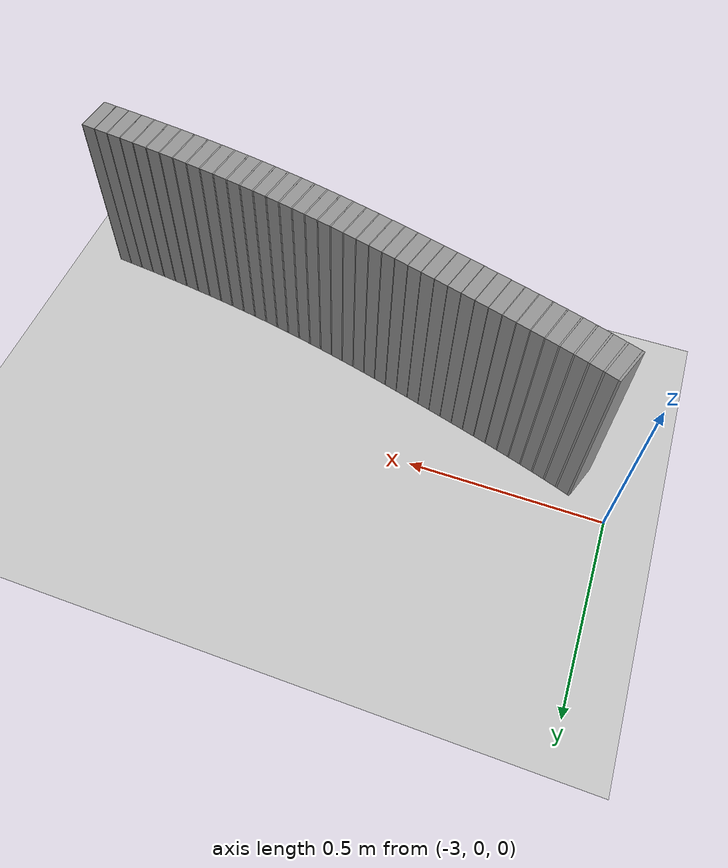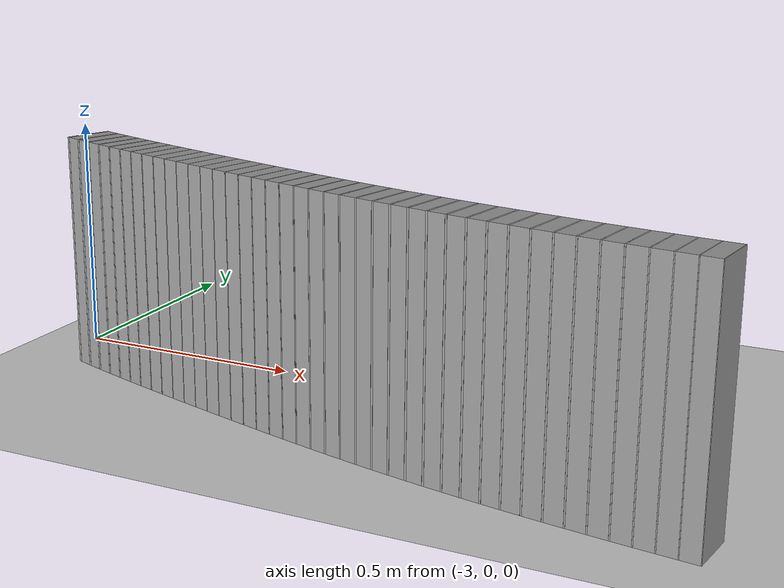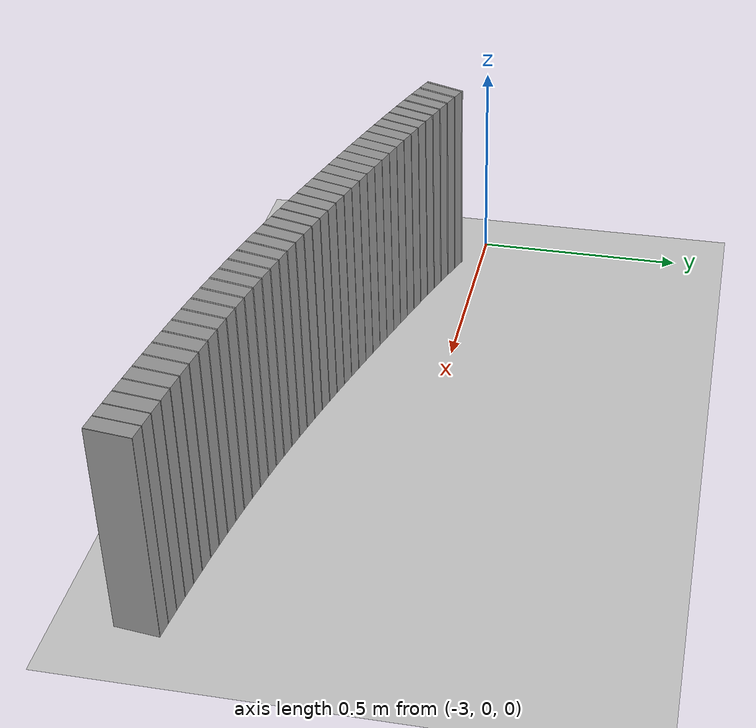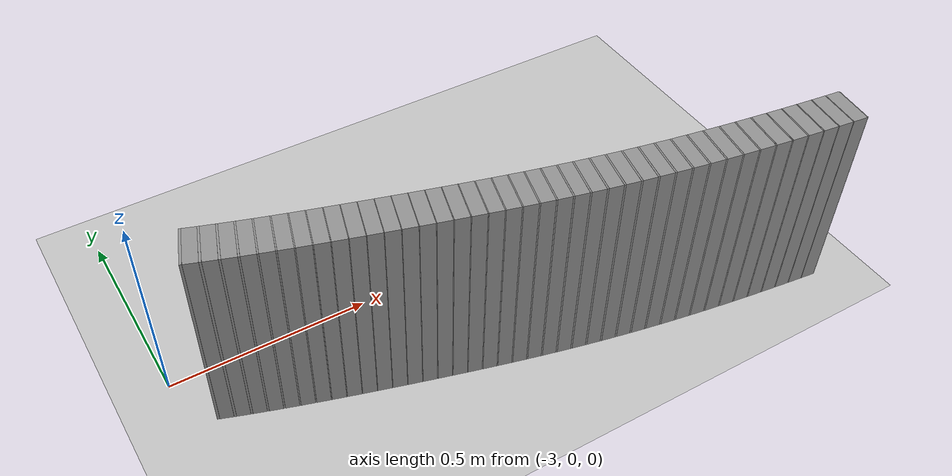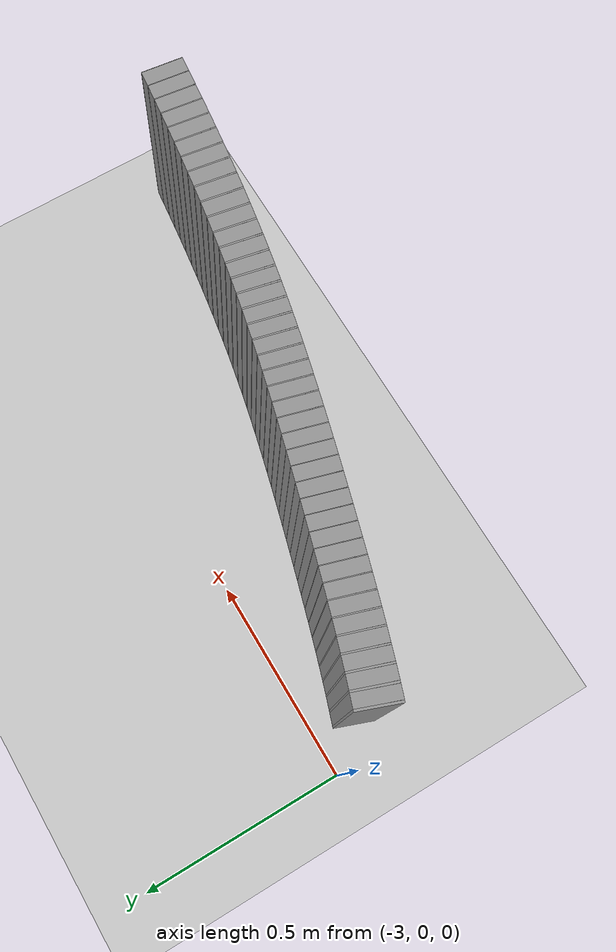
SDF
<sdf version="1.6">
 <world name="default">
  <include><uri>model://ground_plane</uri></include>
  <include><uri>model://sun</uri></include>
  <model name="wall_742_inward">
   <static>true</static>
   <link name="link">
    <collision name="collision">
     <geometry><box><size>0.005697018000061201 0.1 0.5</size></box></geometry>
    </collision>
    <visual name="visual">
     <geometry><box><size>0.005697018000061201 0.1 0.5</size></box></geometry>
     <material>
      <script><uri>file://media/materials/scripts/gazebo.material</uri><name>Gazebo/Gray</name></script>
     </material>
    </visual>
   </link>
   <pose>-2.920070539777164 -0.09526358439808369 0.25 0 0 -0.3525742780123561</pose>
  </model>
  <model name="wall_743_inward">
   <static>true</static>
   <link name="link">
    <collision name="collision">
     <geometry><box><size>0.03137926990209979 0.1 0.5</size></box></geometry>
    </collision>
    <visual name="visual">
     <geometry><box><size>0.03137926990209979 0.1 0.5</size></box></geometry>
     <material>
      <script><uri>file://media/materials/scripts/gazebo.material</uri><name>Gazebo/Gray</name></script>
     </material>
    </visual>
   </link>
   <pose>-2.9026421080511815 -0.10158110750335547 0.25 0 0 -0.34687722919476377</pose>
  </model>
  <model name="wall_744_inward">
   <static>true</static>
   <link name="link">
    <collision name="collision">
     <geometry><box><size>0.005223973176694402 0.1 0.5</size></box></geometry>
    </collision>
    <visual name="visual">
     <geometry><box><size>0.005223973176694402 0.1 0.5</size></box></geometry>
     <material>
      <script><uri>file://media/materials/scripts/gazebo.material</uri><name>Gazebo/Gray</name></script>
     </material>
    </visual>
   </link>
   <pose>-2.88542594556199 -0.10779013172130386 0.25 0 0 -0.3416532322575128</pose>
  </model>
  <model name="wall_745_inward">
   <static>true</static>
   <link name="link">
    <collision name="collision">
     <geometry><box><size>0.03155660946172604 0.1 0.5</size></box></geometry>
    </collision>
    <visual name="visual">
     <geometry><box><size>0.03155660946172604 0.1 0.5</size></box></geometry>
     <material>
      <script><uri>file://media/materials/scripts/gazebo.material</uri><name>Gazebo/Gray</name></script>
     </material>
    </visual>
   </link>
   <pose>-2.86807116205949 -0.11387397751884465 0.25 0 0 -0.33642923532023017</pose>
  </model>
  <model name="wall_746_inward">
   <static>true</static>
   <link name="link">
    <collision name="collision">
     <geometry><box><size>0.004707058921604461 0.1 0.5</size></box></geometry>
    </collision>
    <visual name="visual">
     <geometry><box><size>0.004707058921604461 0.1 0.5</size></box></geometry>
     <material>
      <script><uri>file://media/materials/scripts/gazebo.material</uri><name>Gazebo/Gray</name></script>
     </material>
    </visual>
   </link>
   <pose>-2.8509521758342444 -0.11984916780851954 0.25 0 0 -0.33172215901650026</pose>
  </model>
  <model name="wall_747_inward">
   <static>true</static>
   <link name="link">
    <collision name="collision">
     <geometry><box><size>0.03178427745353246 0.1 0.5</size></box></geometry>
    </collision>
    <visual name="visual">
     <geometry><box><size>0.03178427745353246 0.1 0.5</size></box></geometry>
     <material>
      <script><uri>file://media/materials/scripts/gazebo.material</uri><name>Gazebo/Gray</name></script>
     </material>
    </visual>
   </link>
   <pose>-2.8336770133013762 -0.12572048268355132 0.25 0 0 -0.32701508271284274</pose>
  </model>
  <model name="wall_748_inward">
   <static>true</static>
   <link name="link">
    <collision name="collision">
     <geometry><box><size>0.004145128207359054 0.1 0.5</size></box></geometry>
    </collision>
    <visual name="visual">
     <geometry><box><size>0.004145128207359054 0.1 0.5</size></box></geometry>
     <material>
      <script><uri>file://media/materials/scripts/gazebo.material</uri><name>Gazebo/Gray</name></script>
     </material>
    </visual>
   </link>
   <pose>-2.8166616005304563 -0.1314829222784098 0.25 0 0 -0.3228699426350896</pose>
  </model>
  <model name="wall_749_inward">
   <static>true</static>
   <link name="link">
    <collision name="collision">
     <geometry><box><size>0.03204723012165562 0.1 0.5</size></box></geometry>
    </collision>
    <visual name="visual">
     <geometry><box><size>0.03204723012165562 0.1 0.5</size></box></geometry>
     <material>
      <script><uri>file://media/materials/scripts/gazebo.material</uri><name>Gazebo/Gray</name></script>
     </material>
    </visual>
   </link>
   <pose>-2.7994795302652515 -0.13716161853164077 0.25 0 0 -0.31872480255728863</pose>
  </model>
  <model name="wall_750_inward">
   <static>true</static>
   <link name="link">
    <collision name="collision">
     <geometry><box><size>0.00357428471727495 0.1 0.5</size></box></geometry>
    </collision>
    <visual name="visual">
     <geometry><box><size>0.00357428471727495 0.1 0.5</size></box></geometry>
     <material>
      <script><uri>file://media/materials/scripts/gazebo.material</uri><name>Gazebo/Gray</name></script>
     </material>
    </visual>
   </link>
   <pose>-2.782563806939475 -0.14273665381170478 0.25 0 0 -0.31515051022942786</pose>
  </model>
  <model name="wall_751_inward">
   <static>true</static>
   <link name="link">
    <collision name="collision">
     <geometry><box><size>0.03233092204469844 0.1 0.5</size></box></geometry>
    </collision>
    <visual name="visual">
     <geometry><box><size>0.03233092204469844 0.1 0.5</size></box></geometry>
     <material>
      <script><uri>file://media/materials/scripts/gazebo.material</uri><name>Gazebo/Gray</name></script>
     </material>
    </visual>
   </link>
   <pose>-2.7654775627097443 -0.14824626878841235 0.25 0 0 -0.31157621790154594</pose>
  </model>
  <model name="wall_752_inward">
   <static>true</static>
   <link name="link">
    <collision name="collision">
     <geometry><box><size>0.0030404049831578724 0.1 0.5</size></box></geometry>
    </collision>
    <visual name="visual">
     <geometry><box><size>0.0030404049831578724 0.1 0.5</size></box></geometry>
     <material>
      <script><uri>file://media/materials/scripts/gazebo.material</uri><name>Gazebo/Gray</name></script>
     </material>
    </visual>
   </link>
   <pose>-2.7486420262746494 -0.15366357251805712 0.25 0 0 -0.30853580823405913</pose>
  </model>
  <model name="wall_753_inward">
   <static>true</static>
   <link name="link">
    <collision name="collision">
     <geometry><box><size>0.03262071291583441 0.1 0.5</size></box></geometry>
    </collision>
    <visual name="visual">
     <geometry><box><size>0.03262071291583441 0.1 0.5</size></box></geometry>
     <material>
      <script><uri>file://media/materials/scripts/gazebo.material</uri><name>Gazebo/Gray</name></script>
     </material>
    </visual>
   </link>
   <pose>-2.731638453454112 -0.15903079848503937 0.25 0 0 -0.30549539856662694</pose>
  </model>
  <model name="wall_754_inward">
   <static>true</static>
   <link name="link">
    <collision name="collision">
     <geometry><box><size>0.002551120893011054 0.1 0.5</size></box></geometry>
    </collision>
    <visual name="visual">
     <geometry><box><size>0.002551120893011054 0.1 0.5</size></box></geometry>
     <material>
      <script><uri>file://media/materials/scripts/gazebo.material</uri><name>Gazebo/Gray</name></script>
     </material>
    </visual>
   </link>
   <pose>-2.7148658236649164 -0.16431693392798652 0.25 0 0 -0.3029442749064195</pose>
  </model>
  <model name="wall_755_inward">
   <static>true</static>
   <link name="link">
    <collision name="collision">
     <geometry><box><size>0.032902582270326754 0.1 0.5</size></box></geometry>
    </collision>
    <visual name="visual">
     <geometry><box><size>0.032902582270326754 0.1 0.5</size></box></geometry>
     <material>
      <script><uri>file://media/materials/scripts/gazebo.material</uri><name>Gazebo/Gray</name></script>
     </material>
    </visual>
   </link>
   <pose>-2.6979337432413804 -0.16956534158714712 0.25 0 0 -0.300393151246172</pose>
  </model>
  <model name="wall_756_inward">
   <static>true</static>
   <link name="link">
    <collision name="collision">
     <geometry><box><size>0.0021331894062931365 0.1 0.5</size></box></geometry>
    </collision>
    <visual name="visual">
     <geometry><box><size>0.0021331894062931365 0.1 0.5</size></box></geometry>
     <material>
      <script><uri>file://media/materials/scripts/gazebo.material</uri><name>Gazebo/Gray</name></script>
     </material>
    </visual>
   </link>
   <pose>-2.6811996333631694 -0.17474663592167355 0.25 0 0 -0.2982599602220321</pose>
  </model>
  <model name="wall_757_inward">
   <static>true</static>
   <link name="link">
    <collision name="collision">
     <geometry><box><size>0.03316296760447436 0.1 0.5</size></box></geometry>
    </collision>
    <visual name="visual">
     <geometry><box><size>0.03316296760447436 0.1 0.5</size></box></geometry>
     <material>
      <script><uri>file://media/materials/scripts/gazebo.material</uri><name>Gazebo/Gray</name></script>
     </material>
    </visual>
   </link>
   <pose>-2.66432037249076 -0.1798988341762474 0.25 0 0 -0.29612676919788816</pose>
  </model>
  <model name="wall_758_inward">
   <static>true</static>
   <link name="link">
    <collision name="collision">
     <geometry><box><size>0.0018036724785689118 0.1 0.5</size></box></geometry>
    </collision>
    <visual name="visual">
     <geometry><box><size>0.0018036724785689118 0.1 0.5</size></box></geometry>
     <material>
      <script><uri>file://media/materials/scripts/gazebo.material</uri><name>Gazebo/Gray</name></script>
     </material>
    </visual>
   </link>
   <pose>-2.647597559243382 -0.18499922123208762 0.25 0 0 -0.29432309574138893</pose>
  </model>
  <model name="wall_759_inward">
   <static>true</static>
   <link name="link">
    <collision name="collision">
     <geometry><box><size>0.03339302944232104 0.1 0.5</size></box></geometry>
    </collision>
    <visual name="visual">
     <geometry><box><size>0.03339302944232104 0.1 0.5</size></box></geometry>
     <material>
      <script><uri>file://media/materials/scripts/gazebo.material</uri><name>Gazebo/Gray</name></script>
     </material>
    </visual>
   </link>
   <pose>-2.6307472496459794 -0.190075536235413 0.25 0 0 -0.29251942228482425</pose>
  </model>
  <model name="wall_760_inward">
   <static>true</static>
   <link name="link">
    <collision name="collision">
     <geometry><box><size>0.0015592049149051946 0.1 0.5</size></box></geometry>
    </collision>
    <visual name="visual">
     <geometry><box><size>0.0015592049149051946 0.1 0.5</size></box></geometry>
     <material>
      <script><uri>file://media/materials/scripts/gazebo.material</uri><name>Gazebo/Gray</name></script>
     </material>
    </visual>
   </link>
   <pose>-2.6140131613051505 -0.19511388193582982 0.25 0 0 -0.2909602167380218</pose>
  </model>
  <model name="wall_761_inward">
   <static>true</static>
   <link name="link">
    <collision name="collision">
     <geometry><box><size>0.03358331479755844 0.1 0.5</size></box></geometry>
    </collision>
    <visual name="visual">
     <geometry><box><size>0.03358331479755844 0.1 0.5</size></box></geometry>
     <material>
      <script><uri>file://media/materials/scripts/gazebo.material</uri><name>Gazebo/Gray</name></script>
     </material>
    </visual>
   </link>
   <pose>-2.597172950342429 -0.20012950112401434 0.25 0 0 -0.28940101119147865</pose>
  </model>
  <model name="wall_762_inward">
   <static>true</static>
   <link name="link">
    <collision name="collision">
     <geometry><box><size>0.0014018011501088607 0.1 0.5</size></box></geometry>
    </collision>
    <visual name="visual">
     <geometry><box><size>0.0014018011501088607 0.1 0.5</size></box></geometry>
     <material>
      <script><uri>file://media/materials/scripts/gazebo.material</uri><name>Gazebo/Gray</name></script>
     </material>
    </visual>
   </link>
   <pose>-2.5804075409099507 -0.20512055390896025 0.25 0 0 -0.2879992095823056</pose>
  </model>
  <model name="wall_763_inward">
   <static>true</static>
   <link name="link">
    <collision name="collision">
     <geometry><box><size>0.0337286445782546 0.1 0.5</size></box></geometry>
    </collision>
    <visual name="visual">
     <geometry><box><size>0.0337286445782546 0.1 0.5</size></box></geometry>
     <material>
      <script><uri>file://media/materials/scripts/gazebo.material</uri><name>Gazebo/Gray</name></script>
     </material>
    </visual>
   </link>
   <pose>-2.5635590589685586 -0.21008701012155992 0.25 0 0 -0.286597407973055</pose>
  </model>
  <model name="wall_764_inward">
   <static>true</static>
   <link name="link">
    <collision name="collision">
     <geometry><box><size>0.0013237612053406539 0.1 0.5</size></box></geometry>
    </collision>
    <visual name="visual">
     <geometry><box><size>0.0013237612053406539 0.1 0.5</size></box></geometry>
     <material>
      <script><uri>file://media/materials/scripts/gazebo.material</uri><name>Gazebo/Gray</name></script>
     </material>
    </visual>
   </link>
   <pose>-2.5467474798868803 -0.2150406529250911 0.25 0 0 -0.28527364638101926</pose>
  </model>
  <model name="wall_765_inward">
   <static>true</static>
   <link name="link">
    <collision name="collision">
     <geometry><box><size>0.03382536645183949 0.1 0.5</size></box></geometry>
    </collision>
    <visual name="visual">
     <geometry><box><size>0.03382536645183949 0.1 0.5</size></box></geometry>
     <material>
      <script><uri>file://media/materials/scripts/gazebo.material</uri><name>Gazebo/Gray</name></script>
     </material>
    </visual>
   </link>
   <pose>-2.529876911384588 -0.2199649998420518 0.25 0 0 -0.28394988478914546</pose>
  </model>
  <model name="wall_766_inward">
   <static>true</static>
   <link name="link">
    <collision name="collision">
     <geometry><box><size>0.001332855872968645 0.1 0.5</size></box></geometry>
    </collision>
    <visual name="visual">
     <geometry><box><size>0.001332855872968645 0.1 0.5</size></box></geometry>
     <material>
      <script><uri>file://media/materials/scripts/gazebo.material</uri><name>Gazebo/Gray</name></script>
     </material>
    </visual>
   </link>
   <pose>-2.5130014833491368 -0.22488892691881887 0.25 0 0 -0.28261702852154147</pose>
  </model>
  <model name="wall_767_inward">
   <static>true</static>
   <link name="link">
    <collision name="collision">
     <geometry><box><size>0.03387230521892995 0.1 0.5</size></box></geometry>
    </collision>
    <visual name="visual">
     <geometry><box><size>0.03387230521892995 0.1 0.5</size></box></geometry>
     <material>
      <script><uri>file://media/materials/scripts/gazebo.material</uri><name>Gazebo/Gray</name></script>
     </material>
    </visual>
   </link>
   <pose>-2.496090935621788 -0.22977607305810877 0.25 0 0 -0.2812841722539327</pose>
  </model>
  <model name="wall_768_inward">
   <static>true</static>
   <link name="link">
    <collision name="collision">
     <geometry><box><size>0.001399199972740897 0.1 0.5</size></box></geometry>
    </collision>
    <visual name="visual">
     <geometry><box><size>0.001399199972740897 0.1 0.5</size></box></geometry>
     <material>
      <script><uri>file://media/materials/scripts/gazebo.material</uri><name>Gazebo/Gray</name></script>
     </material>
    </visual>
   </link>
   <pose>-2.479148001306794 -0.23467063363314639 0.25 0 0 -0.27988497182467076</pose>
  </model>
  <model name="wall_769_inward">
   <static>true</static>
   <link name="link">
    <collision name="collision">
     <geometry><box><size>0.033869677977669245 0.1 0.5</size></box></geometry>
    </collision>
    <visual name="visual">
     <geometry><box><size>0.033869677977669245 0.1 0.5</size></box></geometry>
     <material>
      <script><uri>file://media/materials/scripts/gazebo.material</uri><name>Gazebo/Gray</name></script>
     </material>
    </visual>
   </link>
   <pose>-2.462193237606612 -0.23951928320250251 0.25 0 0 -0.2784857713953505</pose>
  </model>
  <model name="wall_770_inward">
   <static>true</static>
   <link name="link">
    <collision name="collision">
     <geometry><box><size>0.0015277754334126553 0.1 0.5</size></box></geometry>
    </collision>
    <visual name="visual">
     <geometry><box><size>0.0015277754334126553 0.1 0.5</size></box></geometry>
     <material>
      <script><uri>file://media/materials/scripts/gazebo.material</uri><name>Gazebo/Gray</name></script>
     </material>
    </visual>
   </link>
   <pose>-2.4451760732848293 -0.24438354216438274 0.25 0 0 -0.27695799536760773</pose>
  </model>
  <model name="wall_771_inward">
   <static>true</static>
   <link name="link">
    <collision name="collision">
     <geometry><box><size>0.03382190715594962 0.1 0.5</size></box></geometry>
    </collision>
    <visual name="visual">
     <geometry><box><size>0.03382190715594962 0.1 0.5</size></box></geometry>
     <material>
      <script><uri>file://media/materials/scripts/gazebo.material</uri><name>Gazebo/Gray</name></script>
     </material>
    </visual>
   </link>
   <pose>-2.4281677453413737 -0.24919153189065882 0.25 0 0 -0.27543021933986384</pose>
  </model>
  <model name="wall_772_inward">
   <static>true</static>
   <link name="link">
    <collision name="collision">
     <geometry><box><size>0.0017029320166442722 0.1 0.5</size></box></geometry>
    </collision>
    <visual name="visual">
     <geometry><box><size>0.0017029320166442722 0.1 0.5</size></box></geometry>
     <material>
      <script><uri>file://media/materials/scripts/gazebo.material</uri><name>Gazebo/Gray</name></script>
     </material>
    </visual>
   </link>
   <pose>-2.411074428680526 -0.2540208210034102 0.25 0 0 -0.27372728650020806</pose>
  </model>
  <model name="wall_773_inward">
   <static>true</static>
   <link name="link">
    <collision name="collision">
     <geometry><box><size>0.03373461868893254 0.1 0.5</size></box></geometry>
    </collision>
    <visual name="visual">
     <geometry><box><size>0.03373461868893254 0.1 0.5</size></box></geometry>
     <material>
      <script><uri>file://media/materials/scripts/gazebo.material</uri><name>Gazebo/Gray</name></script>
     </material>
    </visual>
   </link>
   <pose>-2.394007581843147 -0.25878293160509935 0.25 0 0 -0.272024353660418</pose>
  </model>
  <model name="wall_774_inward">
   <static>true</static>
   <link name="link">
    <collision name="collision">
     <geometry><box><size>0.0019180596103542493 0.1 0.5</size></box></geometry>
    </collision>
    <visual name="visual">
     <geometry><box><size>0.0019180596103542493 0.1 0.5</size></box></geometry>
     <material>
      <script><uri>file://media/materials/scripts/gazebo.material</uri><name>Gazebo/Gray</name></script>
     </material>
    </visual>
   </link>
   <pose>-2.376836243131544 -0.26357077400202333 0.25 0 0 -0.270106292873953</pose>
  </model>
  <model name="wall_775_inward">
   <static>true</static>
   <link name="link">
    <collision name="collision">
     <geometry><box><size>0.03361778507627744 0.1 0.5</size></box></geometry>
    </collision>
    <visual name="visual">
     <geometry><box><size>0.03361778507627744 0.1 0.5</size></box></geometry>
     <material>
      <script><uri>file://media/materials/scripts/gazebo.material</uri><name>Gazebo/Gray</name></script>
     </material>
    </visual>
   </link>
   <pose>-2.3597039674869826 -0.2682807778588425 0.25 0 0 -0.2681882320875568</pose>
  </model>
  <model name="wall_776_inward">
   <static>true</static>
   <link name="link">
    <collision name="collision">
     <geometry><box><size>0.0021702935504540445 0.1 0.5</size></box></geometry>
    </collision>
    <visual name="visual">
     <geometry><box><size>0.0021702935504540445 0.1 0.5</size></box></geometry>
     <material>
      <script><uri>file://media/materials/scripts/gazebo.material</uri><name>Gazebo/Gray</name></script>
     </material>
    </visual>
   </link>
   <pose>-2.3424489724973334 -0.27302015597640505 0.25 0 0 -0.266017936833383</pose>
  </model>
  <model name="wall_777_inward">
   <static>true</static>
   <link name="link">
    <collision name="collision">
     <geometry><box><size>0.033483125639219076 0.1 0.5</size></box></geometry>
    </collision>
    <visual name="visual">
     <geometry><box><size>0.033483125639219076 0.1 0.5</size></box></geometry>
     <material>
      <script><uri>file://media/materials/scripts/gazebo.material</uri><name>Gazebo/Gray</name></script>
     </material>
    </visual>
   </link>
   <pose>-2.3252397965040625 -0.27767158060131136 0.25 0 0 -0.2638476415791541</pose>
  </model>
  <model name="wall_778_inward">
   <static>true</static>
   <link name="link">
    <collision name="collision">
     <geometry><box><size>0.0024502751458576255 0.1 0.5</size></box></geometry>
    </collision>
    <visual name="visual">
     <geometry><box><size>0.0024502751458576255 0.1 0.5</size></box></geometry>
     <material>
      <script><uri>file://media/materials/scripts/gazebo.material</uri><name>Gazebo/Gray</name></script>
     </material>
    </visual>
   </link>
   <pose>-2.3078940782714383 -0.2823543424836009 0.25 0 0 -0.2613973639813916</pose>
  </model>
  <model name="wall_779_inward">
   <static>true</static>
   <link name="link">
    <collision name="collision">
     <geometry><box><size>0.03334539031251586 0.1 0.5</size></box></geometry>
    </collision>
    <visual name="visual">
     <geometry><box><size>0.03334539031251586 0.1 0.5</size></box></geometry>
     <material>
      <script><uri>file://media/materials/scripts/gazebo.material</uri><name>Gazebo/Gray</name></script>
     </material>
    </visual>
   </link>
   <pose>-2.2905937292665604 -0.2869402140555609 0.25 0 0 -0.25894708638373265</pose>
  </model>
  <model name="wall_780_inward">
   <static>true</static>
   <link name="link">
    <collision name="collision">
     <geometry><box><size>0.0027415967229293082 0.1 0.5</size></box></geometry>
    </collision>
    <visual name="visual">
     <geometry><box><size>0.0027415967229293082 0.1 0.5</size></box></geometry>
     <material>
      <script><uri>file://media/materials/scripts/gazebo.material</uri><name>Gazebo/Gray</name></script>
     </material>
    </visual>
   </link>
   <pose>-2.2731508461994583 -0.2915568488522148 0.25 0 0 -0.25620548622636147</pose>
  </model>
  <model name="wall_781_inward">
   <static>true</static>
   <link name="link">
    <collision name="collision">
     <geometry><box><size>0.03322290282873839 0.1 0.5</size></box></geometry>
    </collision>
    <visual name="visual">
     <geometry><box><size>0.03322290282873839 0.1 0.5</size></box></geometry>
     <material>
      <script><uri>file://media/materials/scripts/gazebo.material</uri><name>Gazebo/Gray</name></script>
     </material>
    </visual>
   </link>
   <pose>-2.255744083311904 -0.29606969070875244 0.25 0 0 -0.25346388606891557</pose>
  </model>
  <model name="wall_782_inward">
   <static>true</static>
   <link name="link">
    <collision name="collision">
     <geometry><box><size>0.0030359253816926173 0.1 0.5</size></box></geometry>
    </collision>
    <visual name="visual">
     <geometry><box><size>0.0030359253816926173 0.1 0.5</size></box></geometry>
     <material>
      <script><uri>file://media/materials/scripts/gazebo.material</uri><name>Gazebo/Gray</name></script>
     </material>
    </visual>
   </link>
   <pose>-2.2381927618373925 -0.30061133555267333 0.25 0 0 -0.2504279560235367</pose>
  </model>
  <model name="wall_783_inward">
   <static>true</static>
   <link name="link">
    <collision name="collision">
     <geometry><box><size>0.033134488431604645 0.1 0.5</size></box></geometry>
    </collision>
    <visual name="visual">
     <geometry><box><size>0.033134488431604645 0.1 0.5</size></box></geometry>
     <material>
      <script><uri>file://media/materials/scripts/gazebo.material</uri><name>Gazebo/Gray</name></script>
     </material>
    </visual>
   </link>
   <pose>-2.2206593061031037 -0.3050444391021182 0.25 0 0 -0.24739202597827686</pose>
  </model>
  <model name="wall_784_inward">
   <static>true</static>
   <link name="link">
    <collision name="collision">
     <geometry><box><size>0.0033316276413112708 0.1 0.5</size></box></geometry>
    </collision>
    <visual name="visual">
     <geometry><box><size>0.0033316276413112708 0.1 0.5</size></box></geometry>
     <material>
      <script><uri>file://media/materials/scripts/gazebo.material</uri><name>Gazebo/Gray</name></script>
     </material>
    </visual>
   </link>
   <pose>-2.2029800153196826 -0.30950389830981867 0.25 0 0 -0.24406039217355321</pose>
  </model>
  <model name="wall_785_inward">
   <static>true</static>
   <link name="link">
    <collision name="collision">
     <geometry><box><size>0.03309850966587743 0.1 0.5</size></box></geometry>
    </collision>
    <visual name="visual">
     <geometry><box><size>0.03309850966587743 0.1 0.5</size></box></geometry>
     <material>
      <script><uri>file://media/materials/scripts/gazebo.material</uri><name>Gazebo/Gray</name></script>
     </material>
    </visual>
   </link>
   <pose>-2.185291519601511 -0.31385194836531294 0.25 0 0 -0.24072875836885638</pose>
  </model>
  <model name="wall_786_inward">
   <static>true</static>
   <link name="link">
    <collision name="collision">
     <geometry><box><size>0.003609126206462196 0.1 0.5</size></box></geometry>
    </collision>
    <visual name="visual">
     <geometry><box><size>0.003609126206462196 0.1 0.5</size></box></geometry>
     <material>
      <script><uri>file://media/materials/scripts/gazebo.material</uri><name>Gazebo/Gray</name></script>
     </material>
    </visual>
   </link>
   <pose>-2.1674654020531823 -0.3182213621682665 0.25 0 0 -0.23711962432708125</pose>
  </model>
  <model name="wall_787_inward">
   <static>true</static>
   <link name="link">
    <collision name="collision">
     <geometry><box><size>0.03313184103623073 0.1 0.5</size></box></geometry>
    </collision>
    <visual name="visual">
     <geometry><box><size>0.03313184103623073 0.1 0.5</size></box></geometry>
     <material>
      <script><uri>file://media/materials/scripts/gazebo.material</uri><name>Gazebo/Gray</name></script>
     </material>
    </visual>
   </link>
   <pose>-2.149595010289423 -0.3224785181783723 0.25 0 0 -0.23351049028526152</pose>
  </model>
  <model name="wall_788_inward">
   <static>true</static>
   <link name="link">
    <collision name="collision">
     <geometry><box><size>0.0038423175004282154 0.1 0.5</size></box></geometry>
    </collision>
    <visual name="visual">
     <geometry><box><size>0.0038423175004282154 0.1 0.5</size></box></geometry>
     <material>
      <script><uri>file://media/materials/scripts/gazebo.material</uri><name>Gazebo/Gray</name></script>
     </material>
    </visual>
   </link>
   <pose>-2.13160797450853 -0.3267491356784603 0.25 0 0 -0.22966816333048717</pose>
  </model>
  <model name="wall_789_inward">
   <static>true</static>
   <link name="link">
    <collision name="collision">
     <geometry><box><size>0.03324869472113598 0.1 0.5</size></box></geometry>
    </collision>
    <visual name="visual">
     <geometry><box><size>0.03324869472113598 0.1 0.5</size></box></geometry>
     <material>
      <script><uri>file://media/materials/scripts/gazebo.material</uri><name>Gazebo/Gray</name></script>
     </material>
    </visual>
   </link>
   <pose>-2.1135350142687557 -0.3309088752810211 0.25 0 0 -0.22582583637572143</pose>
  </model>
  <model name="wall_790_inward">
   <static>true</static>
   <link name="link">
    <collision name="collision">
     <geometry><box><size>0.004036915163748479 0.1 0.5</size></box></geometry>
    </collision>
    <visual name="visual">
     <geometry><box><size>0.004036915163748479 0.1 0.5</size></box></geometry>
     <material>
      <script><uri>file://media/materials/scripts/gazebo.material</uri><name>Gazebo/Gray</name></script>
     </material>
    </visual>
   </link>
   <pose>-2.0953637505165723 -0.33507526495605855 0.25 0 0 -0.2217889102471536</pose>
  </model>
  <model name="wall_791_inward">
   <static>true</static>
   <link name="link">
    <collision name="collision">
     <geometry><box><size>0.0334575690908937 0.1 0.5</size></box></geometry>
    </collision>
    <visual name="visual">
     <geometry><box><size>0.0334575690908937 0.1 0.5</size></box></geometry>
     <material>
      <script><uri>file://media/materials/scripts/gazebo.material</uri><name>Gazebo/Gray</name></script>
     </material>
    </visual>
   </link>
   <pose>-2.0770609902759776 -0.33913328228895234 0.25 0 0 -0.21775198411861793</pose>
  </model>
  <model name="wall_792_inward">
   <static>true</static>
   <link name="link">
    <collision name="collision">
     <geometry><box><size>0.0041517636005003605 0.1 0.5</size></box></geometry>
    </collision>
    <visual name="visual">
     <geometry><box><size>0.0041517636005003605 0.1 0.5</size></box></geometry>
     <material>
      <script><uri>file://media/materials/scripts/gazebo.material</uri><name>Gazebo/Gray</name></script>
     </material>
    </visual>
   </link>
   <pose>-2.0586985410233636 -0.3431873339933285 0.25 0 0 -0.2136002085905777</pose>
  </model>
  <model name="wall_793_inward">
   <static>true</static>
   <link name="link">
    <collision name="collision">
     <geometry><box><size>0.03375943355418239 0.1 0.5</size></box></geometry>
    </collision>
    <visual name="visual">
     <geometry><box><size>0.03375943355418239 0.1 0.5</size></box></geometry>
     <material>
      <script><uri>file://media/materials/scripts/gazebo.material</uri><name>Gazebo/Gray</name></script>
     </material>
    </visual>
   </link>
   <pose>-2.0401590123978544 -0.3471370164833626 0.25 0 0 -0.2094484330625898</pose>
  </model>
  <model name="wall_794_inward">
   <static>true</static>
   <link name="link">
    <collision name="collision">
     <geometry><box><size>0.004211354718207173 0.1 0.5</size></box></geometry>
    </collision>
    <visual name="visual">
     <geometry><box><size>0.004211354718207173 0.1 0.5</size></box></geometry>
     <material>
      <script><uri>file://media/materials/scripts/gazebo.material</uri><name>Gazebo/Gray</name></script>
     </material>
    </visual>
   </link>
   <pose>-2.0215867043736706 -0.35107578974179016 0.25 0 0 -0.2052370658958597</pose>
  </model>
  <model name="wall_795_inward">
   <static>true</static>
   <link name="link">
    <collision name="collision">
     <geometry><box><size>0.03414826843760892 0.1 0.5</size></box></geometry>
    </collision>
    <visual name="visual">
     <geometry><box><size>0.03414826843760892 0.1 0.5</size></box></geometry>
     <material>
      <script><uri>file://media/materials/scripts/gazebo.material</uri><name>Gazebo/Gray</name></script>
     </material>
    </visual>
   </link>
   <pose>-2.0027949192889176 -0.3549141940784564 0.25 0 0 -0.2010256987291374</pose>
  </model>
  <model name="wall_796_inward">
   <static>true</static>
   <link name="link">
    <collision name="collision">
     <geometry><box><size>0.004210869587769175 0.1 0.5</size></box></geometry>
    </collision>
    <visual name="visual">
     <geometry><box><size>0.004210869587769175 0.1 0.5</size></box></geometry>
     <material>
      <script><uri>file://media/materials/scripts/gazebo.material</uri><name>Gazebo/Gray</name></script>
     </material>
    </visual>
   </link>
   <pose>-1.983999830957841 -0.35873517362813656 0.25 0 0 -0.1968148166971431</pose>
  </model>
  <model name="wall_797_inward">
   <static>true</static>
   <link name="link">
    <collision name="collision">
     <geometry><box><size>0.034608089833272494 0.1 0.5</size></box></geometry>
    </collision>
    <visual name="visual">
     <geometry><box><size>0.034608089833272494 0.1 0.5</size></box></geometry>
     <material>
      <script><uri>file://media/materials/scripts/gazebo.material</uri><name>Gazebo/Gray</name></script>
     </material>
    </visual>
   </link>
   <pose>-1.9649509647632146 -0.3624591437312303 0.25 0 0 -0.19260393466516226</pose>
  </model>
  <model name="wall_798_inward">
   <static>true</static>
   <link name="link">
    <collision name="collision">
     <geometry><box><size>0.004140745378290532 0.1 0.5</size></box></geometry>
    </collision>
    <visual name="visual">
     <geometry><box><size>0.004140745378290532 0.1 0.5</size></box></geometry>
     <material>
      <script><uri>file://media/materials/scripts/gazebo.material</uri><name>Gazebo/Gray</name></script>
     </material>
    </visual>
   </link>
   <pose>-1.9459331734295238 -0.3661592864429897 0.25 0 0 -0.18846317745406158</pose>
  </model>
  <model name="wall_799_inward">
   <static>true</static>
   <link name="link">
    <collision name="collision">
     <geometry><box><size>0.03511595453941427 0.1 0.5</size></box></geometry>
    </collision>
    <visual name="visual">
     <geometry><box><size>0.03511595453941427 0.1 0.5</size></box></geometry>
     <material>
      <script><uri>file://media/materials/scripts/gazebo.material</uri><name>Gazebo/Gray</name></script>
     </material>
    </visual>
   </link>
   <pose>-1.9266389033880942 -0.3697652041344234 0.25 0 0 -0.1843224202429744</pose>
  </model>
  <model name="wall_800_inward">
   <static>true</static>
   <link name="link">
    <collision name="collision">
     <geometry><box><size>0.0040208873578907855 0.1 0.5</size></box></geometry>
    </collision>
    <visual name="visual">
     <geometry><box><size>0.0040208873578907855 0.1 0.5</size></box></geometry>
     <material>
      <script><uri>file://media/materials/scripts/gazebo.material</uri><name>Gazebo/Gray</name></script>
     </material>
    </visual>
   </link>
   <pose>-1.9074004928880477 -0.3733437637818225 0.25 0 0 -0.18030152205038208</pose>
  </model>
  <model name="wall_801_inward">
   <static>true</static>
   <link name="link">
    <collision name="collision">
     <geometry><box><size>0.03564316826872036 0.1 0.5</size></box></geometry>
    </collision>
    <visual name="visual">
     <geometry><box><size>0.03564316826872036 0.1 0.5</size></box></geometry>
     <material>
      <script><uri>file://media/materials/scripts/gazebo.material</uri><name>Gazebo/Gray</name></script>
     </material>
    </visual>
   </link>
   <pose>-1.8878772403239417 -0.3768296434745519 0.25 0 0 -0.17628062385775486</pose>
  </model>
  <model name="wall_802_inward">
   <static>true</static>
   <link name="link">
    <collision name="collision">
     <geometry><box><size>0.003870965717758273 0.1 0.5</size></box></geometry>
    </collision>
    <visual name="visual">
     <geometry><box><size>0.003870965717758273 0.1 0.5</size></box></geometry>
     <material>
      <script><uri>file://media/materials/scripts/gazebo.material</uri><name>Gazebo/Gray</name></script>
     </material>
    </visual>
   </link>
   <pose>-1.86842505362995 -0.38028704309476946 0.25 0 0 -0.17240964847258874</pose>
  </model>
  <model name="wall_803_inward">
   <static>true</static>
   <link name="link">
    <collision name="collision">
     <geometry><box><size>0.0361559754024263 0.1 0.5</size></box></geometry>
    </collision>
    <visual name="visual">
     <geometry><box><size>0.0361559754024263 0.1 0.5</size></box></geometry>
     <material>
      <script><uri>file://media/materials/scripts/gazebo.material</uri><name>Gazebo/Gray</name></script>
     </material>
    </visual>
   </link>
   <pose>-1.84869642608052 -0.3836515244182066 0.25 0 0 -0.16853867308743964</pose>
  </model>
  <model name="wall_804_inward">
   <static>true</static>
   <link name="link">
    <collision name="collision">
     <geometry><box><size>0.003698915615000353 0.1 0.5</size></box></geometry>
    </collision>
    <visual name="visual">
     <geometry><box><size>0.003698915615000353 0.1 0.5</size></box></geometry>
     <material>
      <script><uri>file://media/materials/scripts/gazebo.material</uri><name>Gazebo/Gray</name></script>
     </material>
    </visual>
   </link>
   <pose>-1.8290501985917982 -0.38698744595697976 0.25 0 0 -0.16483974903763057</pose>
  </model>
  <model name="wall_805_inward">
   <static>true</static>
   <link name="link">
    <collision name="collision">
     <geometry><box><size>0.03662033084452089 0.1 0.5</size></box></geometry>
    </collision>
    <visual name="visual">
     <geometry><box><size>0.03662033084452089 0.1 0.5</size></box></geometry>
     <material>
      <script><uri>file://media/materials/scripts/gazebo.material</uri><name>Gazebo/Gray</name></script>
     </material>
    </visual>
   </link>
   <pose>-1.809152855649378 -0.39022869406091076 0.25 0 0 -0.16114082498784407</pose>
  </model>
  <model name="wall_806_inward">
   <static>true</static>
   <link name="link">
    <collision name="collision">
     <geometry><box><size>0.0035184710202202374 0.1 0.5</size></box></geometry>
    </collision>
    <visual name="visual">
     <geometry><box><size>0.0035184710202202374 0.1 0.5</size></box></geometry>
     <material>
      <script><uri>file://media/materials/scripts/gazebo.material</uri><name>Gazebo/Gray</name></script>
     </material>
    </visual>
   </link>
   <pose>-1.7893424737048045 -0.3934426047973088 0.25 0 0 -0.15762234670801709</pose>
  </model>
  <model name="wall_807_inward">
   <static>true</static>
   <link name="link">
    <collision name="collision">
     <geometry><box><size>0.037004602609792166 0.1 0.5</size></box></geometry>
    </collision>
    <visual name="visual">
     <geometry><box><size>0.037004602609792166 0.1 0.5</size></box></geometry>
     <material>
      <script><uri>file://media/materials/scripts/gazebo.material</uri><name>Gazebo/Gray</name></script>
     </material>
    </visual>
   </link>
   <pose>-1.7693220075233036 -0.3965587570759895 0.25 0 0 -0.15410386842818888</pose>
  </model>
  <model name="wall_808_inward">
   <static>true</static>
   <link name="link">
    <collision name="collision">
     <geometry><box><size>0.003314871112048074 0.1 0.5</size></box></geometry>
    </collision>
    <visual name="visual">
     <geometry><box><size>0.003314871112048074 0.1 0.5</size></box></geometry>
     <material>
      <script><uri>file://media/materials/scripts/gazebo.material</uri><name>Gazebo/Gray</name></script>
     </material>
    </visual>
   </link>
   <pose>-1.7494003397192617 -0.39964773833727174 0.25 0 0 -0.15078899124530395</pose>
  </model>
  <model name="wall_809_inward">
   <static>true</static>
   <link name="link">
    <collision name="collision">
     <geometry><box><size>0.037282224121433075 0.1 0.5</size></box></geometry>
    </collision>
    <visual name="visual">
     <geometry><box><size>0.037282224121433075 0.1 0.5</size></box></geometry>
     <material>
      <script><uri>file://media/materials/scripts/gazebo.material</uri><name>Gazebo/Gray</name></script>
     </material>
    </visual>
   </link>
   <pose>-1.7293229413054365 -0.4026358428834903 0.25 0 0 -0.14747411406235555</pose>
  </model>
  <model name="wall_810_inward">
   <static>true</static>
   <link name="link">
    <collision name="collision">
     <geometry><box><size>0.0031219286347644224 0.1 0.5</size></box></geometry>
    </collision>
    <visual name="visual">
     <geometry><box><size>0.0031219286347644224 0.1 0.5</size></box></geometry>
     <material>
      <script><uri>file://media/materials/scripts/gazebo.material</uri><name>Gazebo/Gray</name></script>
     </material>
    </visual>
   </link>
   <pose>-1.7093394421014088 -0.40559951728286725 0.25 0 0 -0.14435218035627037</pose>
  </model>
  <model name="wall_811_inward">
   <static>true</static>
   <link name="link">
    <collision name="collision">
     <geometry><box><size>0.037436880732246325 0.1 0.5</size></box></geometry>
    </collision>
    <visual name="visual">
     <geometry><box><size>0.037436880732246325 0.1 0.5</size></box></geometry>
     <material>
      <script><uri>file://media/materials/scripts/gazebo.material</uri><name>Gazebo/Gray</name></script>
     </material>
    </visual>
   </link>
   <pose>-1.6892626412921592 -0.40845889462819907 0.25 0 0 -0.14123024665022024</pose>
  </model>
  <model name="wall_812_inward">
   <static>true</static>
   <link name="link">
    <collision name="collision">
     <geometry><box><size>0.0029091224275456973 0.1 0.5</size></box></geometry>
    </collision>
    <visual name="visual">
     <geometry><box><size>0.0029091224275456973 0.1 0.5</size></box></geometry>
     <material>
      <script><uri>file://media/materials/scripts/gazebo.material</uri><name>Gazebo/Gray</name></script>
     </material>
    </visual>
   </link>
   <pose>-1.6692899011635423 -0.41129428068195384 0.25 0 0 -0.13832112011933131</pose>
  </model>
  <model name="wall_813_inward">
   <static>true</static>
   <link name="link">
    <collision name="collision">
     <geometry><box><size>0.037459138127451566 0.1 0.5</size></box></geometry>
    </collision>
    <visual name="visual">
     <geometry><box><size>0.037459138127451566 0.1 0.5</size></box></geometry>
     <material>
      <script><uri>file://media/materials/scripts/gazebo.material</uri><name>Gazebo/Gray</name></script>
     </material>
    </visual>
   </link>
   <pose>-1.6492911178612797 -0.41402330082255157 0.25 0 0 -0.13541199358847056</pose>
  </model>
  <model name="wall_814_inward">
   <static>true</static>
   <link name="link">
    <collision name="collision">
     <geometry><box><size>0.002679861890712581 0.1 0.5</size></box></geometry>
    </collision>
    <visual name="visual">
     <geometry><box><size>0.002679861890712581 0.1 0.5</size></box></geometry>
     <material>
      <script><uri>file://media/materials/scripts/gazebo.material</uri><name>Gazebo/Gray</name></script>
     </material>
    </visual>
   </link>
   <pose>-1.629404858144751 -0.41672909550576254 0.25 0 0 -0.13273212849012186</pose>
  </model>
  <model name="wall_815_inward">
   <static>true</static>
   <link name="link">
    <collision name="collision">
     <geometry><box><size>0.037351026314152554 0.1 0.5</size></box></geometry>
    </collision>
    <visual name="visual">
     <geometry><box><size>0.037351026314152554 0.1 0.5</size></box></geometry>
     <material>
      <script><uri>file://media/materials/scripts/gazebo.material</uri><name>Gazebo/Gray</name></script>
     </material>
    </visual>
   </link>
   <pose>-1.609558912572218 -0.41932837756745256 0.25 0 0 -0.1300522633917393</pose>
  </model>
  <model name="wall_816_inward">
   <static>true</static>
   <link name="link">
    <collision name="collision">
     <geometry><box><size>0.002397837746150665 0.1 0.5</size></box></geometry>
    </collision>
    <visual name="visual">
     <geometry><box><size>0.002397837746150665 0.1 0.5</size></box></geometry>
     <material>
      <script><uri>file://media/materials/scripts/gazebo.material</uri><name>Gazebo/Gray</name></script>
     </material>
    </visual>
   </link>
   <pose>-1.589851948385148 -0.4219029614782818 0.25 0 0 -0.12765442334778987</pose>
  </model>
  <model name="wall_817_inward">
   <static>true</static>
   <link name="link">
    <collision name="collision">
     <geometry><box><size>0.03712491780808053 0.1 0.5</size></box></geometry>
    </collision>
    <visual name="visual">
     <geometry><box><size>0.03712491780808053 0.1 0.5</size></box></geometry>
     <material>
      <script><uri>file://media/materials/scripts/gazebo.material</uri><name>Gazebo/Gray</name></script>
     </material>
    </visual>
   </link>
   <pose>-1.5702457508226417 -0.42437458864118827 0.25 0 0 -0.1252565833038684</pose>
  </model>
  <model name="wall_818_inward">
   <static>true</static>
   <link name="link">
    <collision name="collision">
     <geometry><box><size>0.0020767994382821244 0.1 0.5</size></box></geometry>
    </collision>
    <visual name="visual">
     <geometry><box><size>0.0020767994382821244 0.1 0.5</size></box></geometry>
     <material>
      <script><uri>file://media/materials/scripts/gazebo.material</uri><name>Gazebo/Gray</name></script>
     </material>
    </visual>
   </link>
   <pose>-1.5507981850877526 -0.42682117046426354 0.25 0 0 -0.12317978237264927</pose>
  </model>
  <model name="wall_819_inward">
   <static>true</static>
   <link name="link">
    <collision name="collision">
     <geometry><box><size>0.036799439527410945 0.1 0.5</size></box></geometry>
    </collision>
    <visual name="visual">
     <geometry><box><size>0.036799439527410945 0.1 0.5</size></box></geometry>
     <material>
      <script><uri>file://media/materials/scripts/gazebo.material</uri><name>Gazebo/Gray</name></script>
     </material>
    </visual>
   </link>
   <pose>-1.5315026933041773 -0.42917157541919376 0.25 0 0 -0.1211029814414871</pose>
  </model>
  <model name="wall_820_inward">
   <static>true</static>
   <link name="link">
    <collision name="collision">
     <geometry><box><size>0.0016944452153332251 0.1 0.5</size></box></geometry>
    </collision>
    <visual name="visual">
     <geometry><box><size>0.0016944452153332251 0.1 0.5</size></box></geometry>
     <material>
      <script><uri>file://media/materials/scripts/gazebo.material</uri><name>Gazebo/Gray</name></script>
     </material>
    </visual>
   </link>
   <pose>-1.5123965434797628 -0.4314953191177603 0.25 0 0 -0.11940853541531667</pose>
  </model>
  <model name="wall_821_inward">
   <static>true</static>
   <link name="link">
    <collision name="collision">
     <geometry><box><size>0.03639880711522239 0.1 0.5</size></box></geometry>
    </collision>
    <visual name="visual">
     <geometry><box><size>0.03639880711522239 0.1 0.5</size></box></geometry>
     <material>
      <script><uri>file://media/materials/scripts/gazebo.material</uri><name>Gazebo/Gray</name></script>
     </material>
    </visual>
   </link>
   <pose>-1.4934818956175642 -0.43373362657179904 0.25 0 0 -0.11771408938915175</pose>
  </model>
  <model name="wall_822_inward">
   <static>true</static>
   <link name="link">
    <collision name="collision">
     <geometry><box><size>0.0012419587303327383 0.1 0.5</size></box></geometry>
    </collision>
    <visual name="visual">
     <geometry><box><size>0.0012419587303327383 0.1 0.5</size></box></geometry>
     <material>
      <script><uri>file://media/materials/scripts/gazebo.material</uri><name>Gazebo/Gray</name></script>
     </material>
    </visual>
   </link>
   <pose>-1.4747916654206685 -0.4359431720261772 0.25 0 0 -0.116472130339567</pose>
  </model>
 </world>
</sdf>
